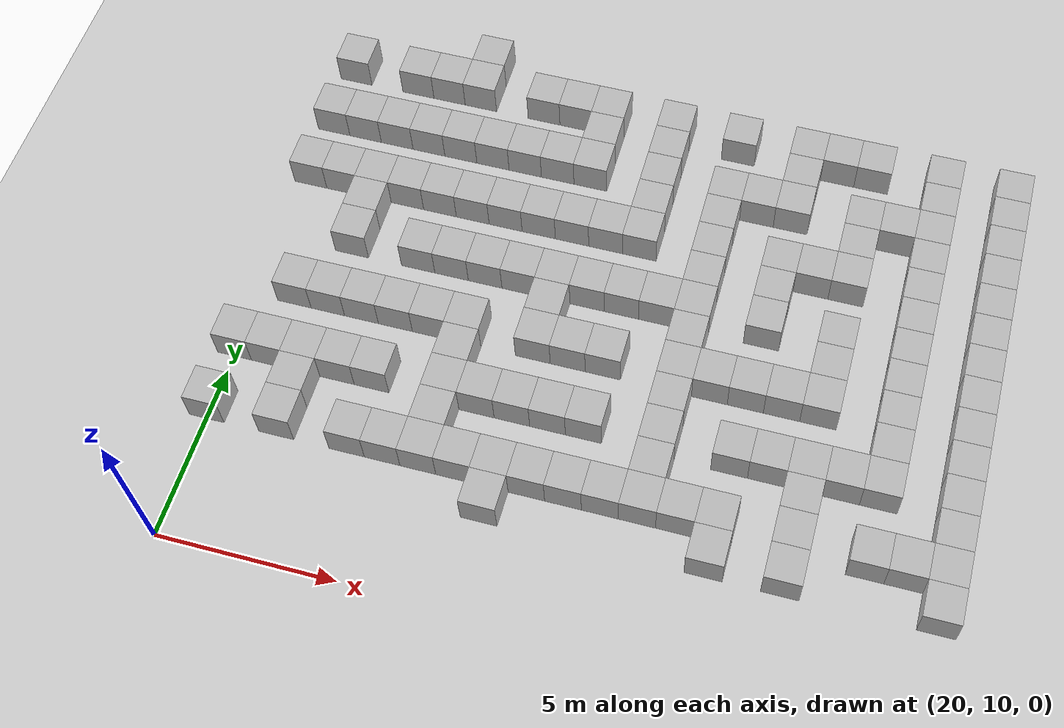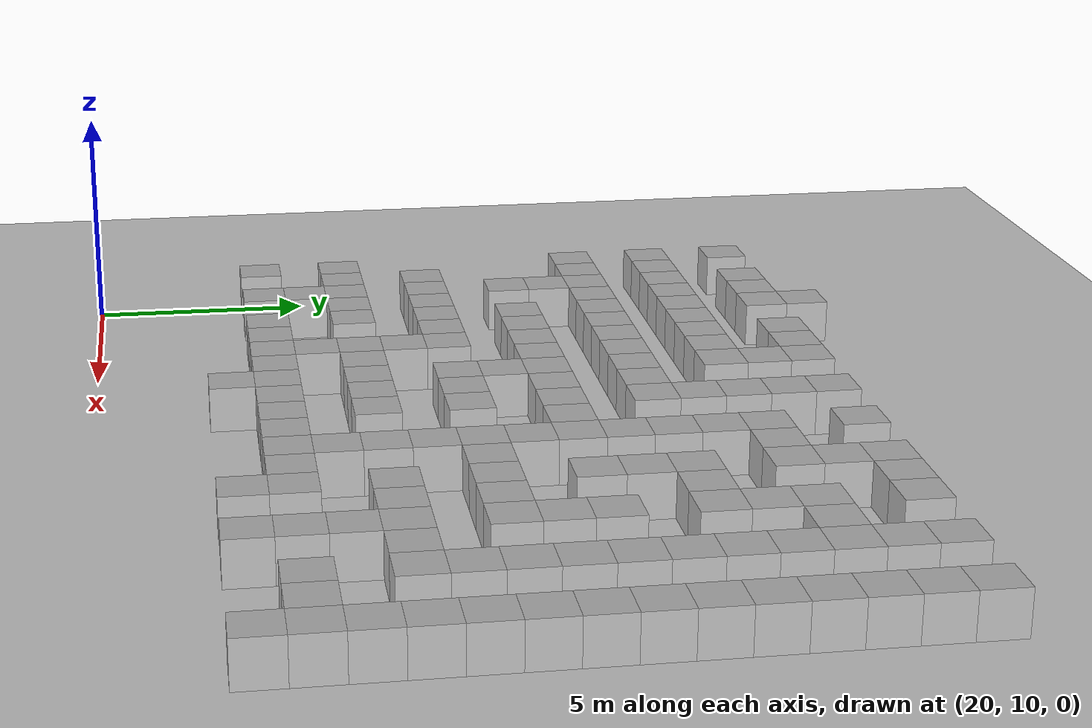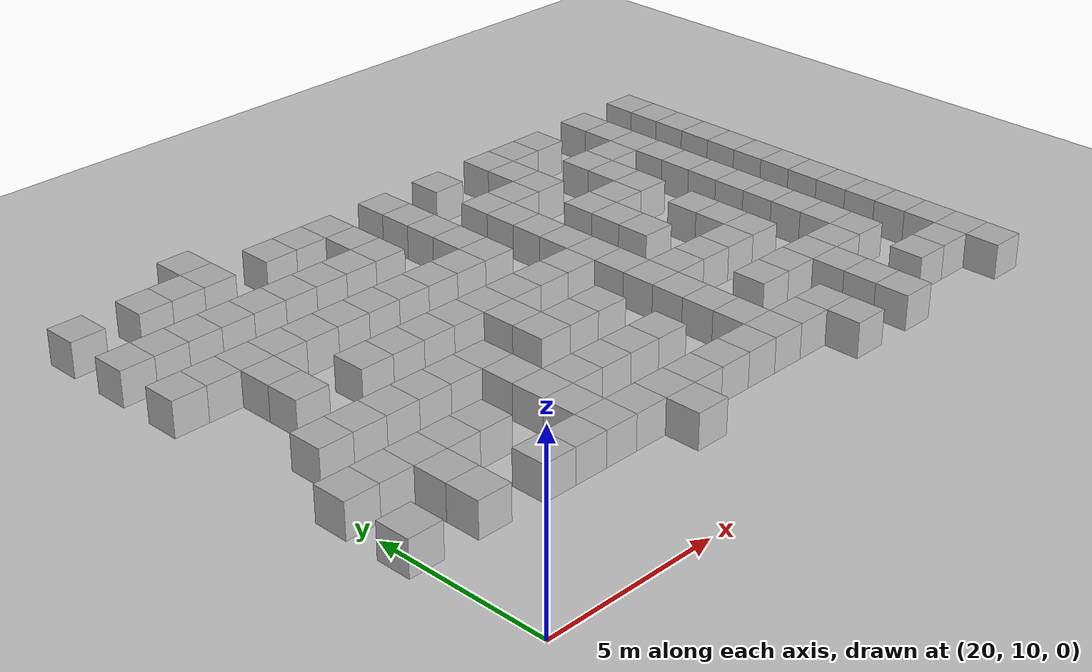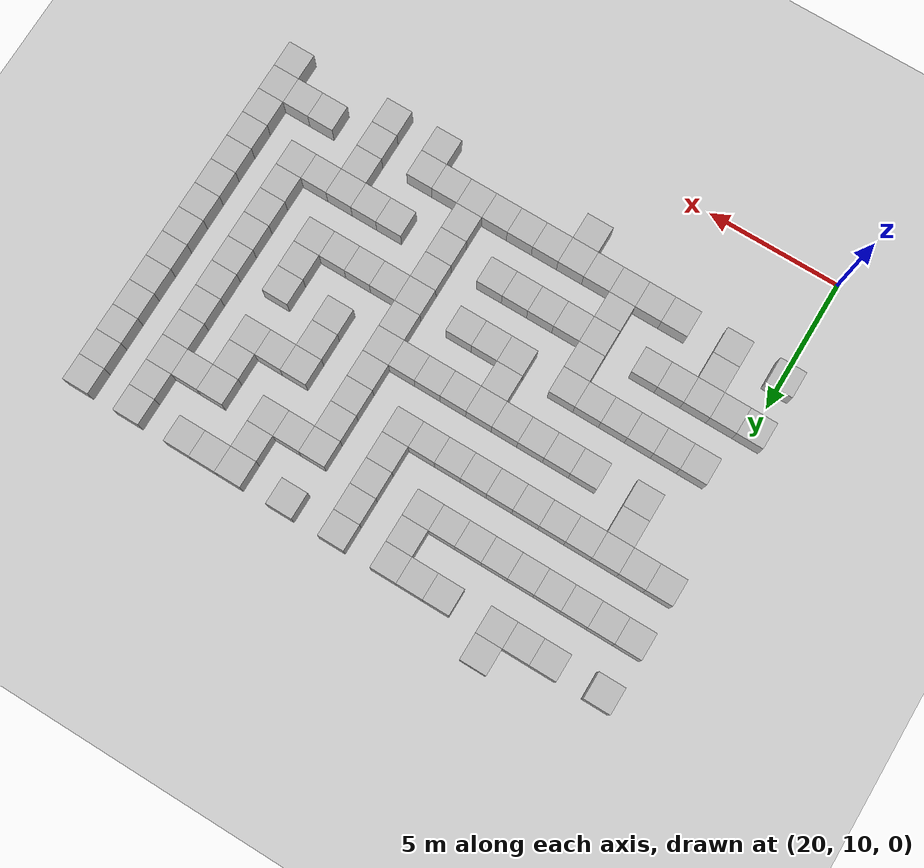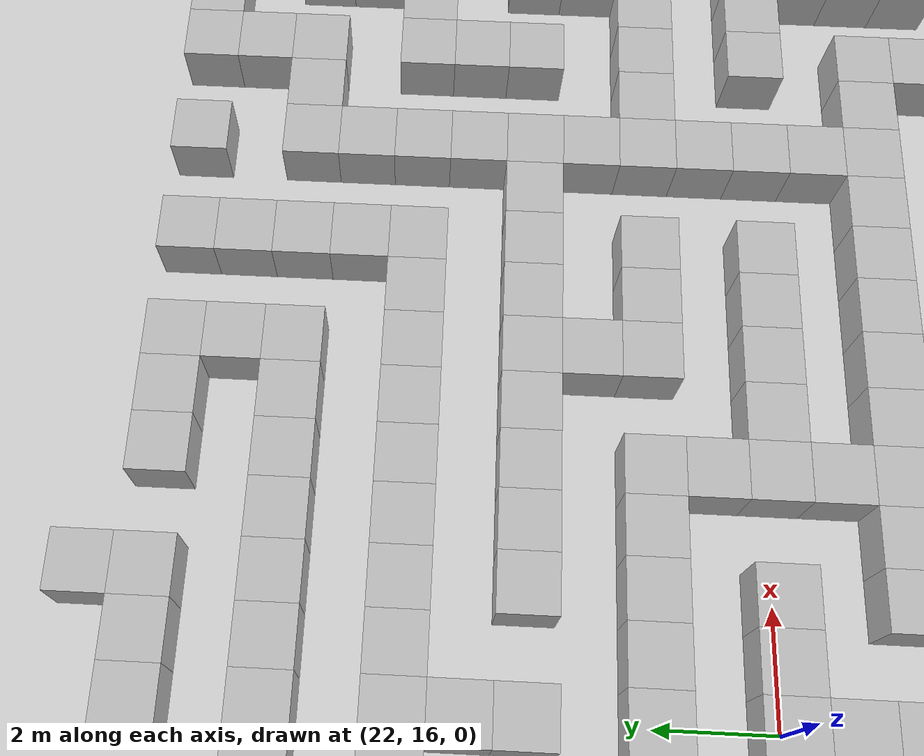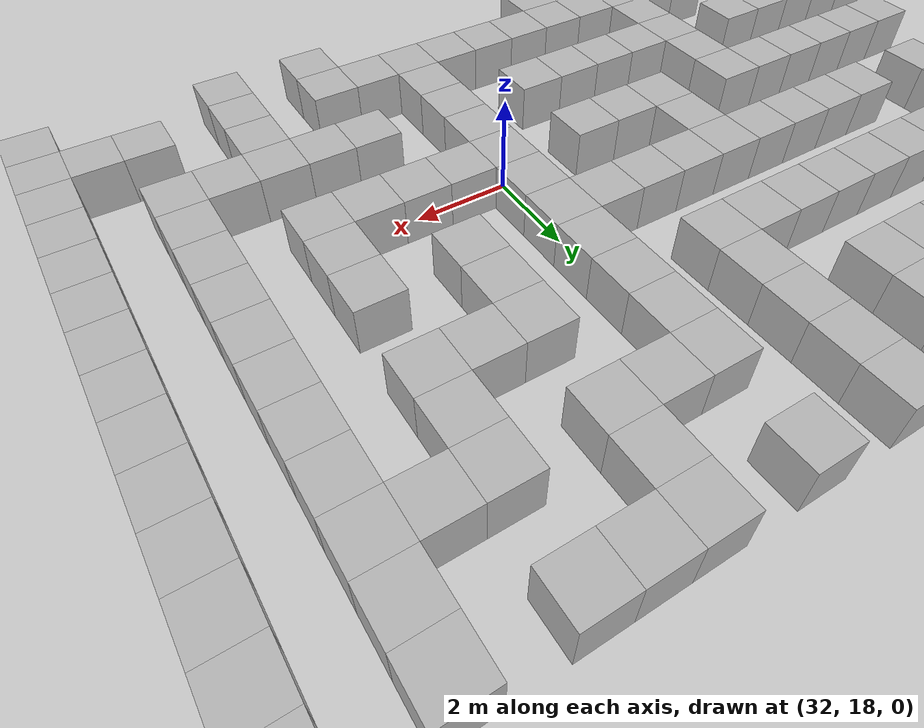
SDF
<sdf version="1.8">
 <world name="custom_maze">
  <model name="ground_plane">
   <static>1</static>
   <link name="link">
    <collision name="collision">
     <geometry><plane><normal>0 0 1</normal><size>100 100</size></plane></geometry>
    </collision>
    <visual name="visual">
     <geometry><plane><normal>0 0 1</normal><size>100 100</size></plane></geometry>
     <material>
      <ambient>0.8 0.8 0.8 1</ambient>
      <diffuse>0.8 0.8 0.8 1</diffuse>
      <specular>0.8 0.8 0.8 1</specular>
     </material>
     <plugin name="__default__" filename="__default__"/>
    </visual>
   </link>
   <plugin name="__default__" filename="__default__"/>
  </model>
  <model name="obstacles">
   <pose>0 0 0.5 0 0 0</pose>
   <static>true</static>
   <link name="wall16">
    <pose>34 16 0 0 0 0</pose>
    <static>true</static>
    <collision name="wall16_collision"><geometry><box><size>1 1 1</size></box></geometry></collision>
    <visual name="wall16_visual"><geometry><box><size>1 1 1</size></box></geometry></visual>
   </link>
   <link name="wall21">
    <pose>29 22 0 0 0 0</pose>
    <static>true</static>
    <collision name="wall21_collision"><geometry><box><size>1 1 1</size></box></geometry></collision>
    <visual name="wall21_visual"><geometry><box><size>1 1 1</size></box></geometry></visual>
   </link>
   <link name="wall22">
    <pose>21 18 0 0 0 0</pose>
    <static>true</static>
    <collision name="wall22_collision"><geometry><box><size>1 1 1</size></box></geometry></collision>
    <visual name="wall22_visual"><geometry><box><size>1 1 1</size></box></geometry></visual>
   </link>
   <link name="wall28">
    <pose>25 24 0 0 0 0</pose>
    <static>true</static>
    <collision name="wall28_collision"><geometry><box><size>1 1 1</size></box></geometry></collision>
    <visual name="wall28_visual"><geometry><box><size>1 1 1</size></box></geometry></visual>
   </link>
   <link name="wall30">
    <pose>22 18 0 0 0 0</pose>
    <static>true</static>
    <collision name="wall30_collision"><geometry><box><size>1 1 1</size></box></geometry></collision>
    <visual name="wall30_visual"><geometry><box><size>1 1 1</size></box></geometry></visual>
   </link>
   <link name="wall38">
    <pose>36 15 0 0 0 0</pose>
    <static>true</static>
    <collision name="wall38_collision"><geometry><box><size>1 1 1</size></box></geometry></collision>
    <visual name="wall38_visual"><geometry><box><size>1 1 1</size></box></geometry></visual>
   </link>
   <link name="wall42">
    <pose>40 21 0 0 0 0</pose>
    <static>true</static>
    <collision name="wall42_collision"><geometry><box><size>1 1 1</size></box></geometry></collision>
    <visual name="wall42_visual"><geometry><box><size>1 1 1</size></box></geometry></visual>
   </link>
   <link name="wall44">
    <pose>33 18 0 0 0 0</pose>
    <static>true</static>
    <collision name="wall44_collision"><geometry><box><size>1 1 1</size></box></geometry></collision>
    <visual name="wall44_visual"><geometry><box><size>1 1 1</size></box></geometry></visual>
   </link>
   <link name="wall45">
    <pose>25 14 0 0 0 0</pose>
    <static>true</static>
    <collision name="wall45_collision"><geometry><box><size>1 1 1</size></box></geometry></collision>
    <visual name="wall45_visual"><geometry><box><size>1 1 1</size></box></geometry></visual>
   </link>
   <link name="wall46">
    <pose>32 22 0 0 0 0</pose>
    <static>true</static>
    <collision name="wall46_collision"><geometry><box><size>1 1 1</size></box></geometry></collision>
    <visual name="wall46_visual"><geometry><box><size>1 1 1</size></box></geometry></visual>
   </link>
   <link name="wall51">
    <pose>28 24 0 0 0 0</pose>
    <static>true</static>
    <collision name="wall51_collision"><geometry><box><size>1 1 1</size></box></geometry></collision>
    <visual name="wall51_visual"><geometry><box><size>1 1 1</size></box></geometry></visual>
   </link>
   <link name="wall71">
    <pose>36 18 0 0 0 0</pose>
    <static>true</static>
    <collision name="wall71_collision"><geometry><box><size>1 1 1</size></box></geometry></collision>
    <visual name="wall71_visual"><geometry><box><size>1 1 1</size></box></geometry></visual>
   </link>
   <link name="wall72">
    <pose>28 14 0 0 0 0</pose>
    <static>true</static>
    <collision name="wall72_collision"><geometry><box><size>1 1 1</size></box></geometry></collision>
    <visual name="wall72_visual"><geometry><box><size>1 1 1</size></box></geometry></visual>
   </link>
   <link name="wall88">
    <pose>31 14 0 0 0 0</pose>
    <static>true</static>
    <collision name="wall88_collision"><geometry><box><size>1 1 1</size></box></geometry></collision>
    <visual name="wall88_visual"><geometry><box><size>1 1 1</size></box></geometry></visual>
   </link>
   <link name="wall97">
    <pose>30 26 0 0 0 0</pose>
    <static>true</static>
    <collision name="wall97_collision"><geometry><box><size>1 1 1</size></box></geometry></collision>
    <visual name="wall97_visual"><geometry><box><size>1 1 1</size></box></geometry></visual>
   </link>
   <link name="wall114">
    <pose>38 21 0 0 0 0</pose>
    <static>true</static>
    <collision name="wall114_collision"><geometry><box><size>1 1 1</size></box></geometry></collision>
    <visual name="wall114_visual"><geometry><box><size>1 1 1</size></box></geometry></visual>
   </link>
   <link name="wall115">
    <pose>30 16 0 0 0 0</pose>
    <static>true</static>
    <collision name="wall115_collision"><geometry><box><size>1 1 1</size></box></geometry></collision>
    <visual name="wall115_visual"><geometry><box><size>1 1 1</size></box></geometry></visual>
   </link>
   <link name="wall132">
    <pose>40 20 0 0 0 0</pose>
    <static>true</static>
    <collision name="wall132_collision"><geometry><box><size>1 1 1</size></box></geometry></collision>
    <visual name="wall132_visual"><geometry><box><size>1 1 1</size></box></geometry></visual>
   </link>
   <link name="wall136">
    <pose>34 18 0 0 0 0</pose>
    <static>true</static>
    <collision name="wall136_collision"><geometry><box><size>1 1 1</size></box></geometry></collision>
    <visual name="wall136_visual"><geometry><box><size>1 1 1</size></box></geometry></visual>
   </link>
   <link name="wall146">
    <pose>22 20 0 0 0 0</pose>
    <static>true</static>
    <collision name="wall146_collision"><geometry><box><size>1 1 1</size></box></geometry></collision>
    <visual name="wall146_visual"><geometry><box><size>1 1 1</size></box></geometry></visual>
   </link>
   <link name="wall154">
    <pose>28 13 0 0 0 0</pose>
    <static>true</static>
    <collision name="wall154_collision"><geometry><box><size>1 1 1</size></box></geometry></collision>
    <visual name="wall154_visual"><geometry><box><size>1 1 1</size></box></geometry></visual>
   </link>
   <link name="wall156">
    <pose>29 14 0 0 0 0</pose>
    <static>true</static>
    <collision name="wall156_collision"><geometry><box><size>1 1 1</size></box></geometry></collision>
    <visual name="wall156_visual"><geometry><box><size>1 1 1</size></box></geometry></visual>
   </link>
   <link name="wall157">
    <pose>40 23 0 0 0 0</pose>
    <static>true</static>
    <collision name="wall157_collision"><geometry><box><size>1 1 1</size></box></geometry></collision>
    <visual name="wall157_visual"><geometry><box><size>1 1 1</size></box></geometry></visual>
   </link>
   <link name="wall160">
    <pose>32 24 0 0 0 0</pose>
    <static>true</static>
    <collision name="wall160_collision"><geometry><box><size>1 1 1</size></box></geometry></collision>
    <visual name="wall160_visual"><geometry><box><size>1 1 1</size></box></geometry></visual>
   </link>
   <link name="wall161">
    <pose>24 20 0 0 0 0</pose>
    <static>true</static>
    <collision name="wall161_collision"><geometry><box><size>1 1 1</size></box></geometry></collision>
    <visual name="wall161_visual"><geometry><box><size>1 1 1</size></box></geometry></visual>
   </link>
   <link name="wall164">
    <pose>28 26 0 0 0 0</pose>
    <static>true</static>
    <collision name="wall164_collision"><geometry><box><size>1 1 1</size></box></geometry></collision>
    <visual name="wall164_visual"><geometry><box><size>1 1 1</size></box></geometry></visual>
   </link>
   <link name="wall175">
    <pose>40 13 0 0 0 0</pose>
    <static>true</static>
    <collision name="wall175_collision"><geometry><box><size>1 1 1</size></box></geometry></collision>
    <visual name="wall175_visual"><geometry><box><size>1 1 1</size></box></geometry></visual>
   </link>
   <link name="wall180">
    <pose>32 14 0 0 0 0</pose>
    <static>true</static>
    <collision name="wall180_collision"><geometry><box><size>1 1 1</size></box></geometry></collision>
    <visual name="wall180_visual"><geometry><box><size>1 1 1</size></box></geometry></visual>
   </link>
   <link name="wall183">
    <pose>36 20 0 0 0 0</pose>
    <static>true</static>
    <collision name="wall183_collision"><geometry><box><size>1 1 1</size></box></geometry></collision>
    <visual name="wall183_visual"><geometry><box><size>1 1 1</size></box></geometry></visual>
   </link>
   <link name="wall184">
    <pose>28 16 0 0 0 0</pose>
    <static>true</static>
    <collision name="wall184_collision"><geometry><box><size>1 1 1</size></box></geometry></collision>
    <visual name="wall184_visual"><geometry><box><size>1 1 1</size></box></geometry></visual>
   </link>
   <link name="wall187">
    <pose>23 22 0 0 0 0</pose>
    <static>true</static>
    <collision name="wall187_collision"><geometry><box><size>1 1 1</size></box></geometry></collision>
    <visual name="wall187_visual"><geometry><box><size>1 1 1</size></box></geometry></visual>
   </link>
   <link name="wall197">
    <pose>38 20 0 0 0 0</pose>
    <static>true</static>
    <collision name="wall197_collision"><geometry><box><size>1 1 1</size></box></geometry></collision>
    <visual name="wall197_visual"><geometry><box><size>1 1 1</size></box></geometry></visual>
   </link>
   <link name="wall205">
    <pose>26 22 0 0 0 0</pose>
    <static>true</static>
    <collision name="wall205_collision"><geometry><box><size>1 1 1</size></box></geometry></collision>
    <visual name="wall205_visual"><geometry><box><size>1 1 1</size></box></geometry></visual>
   </link>
   <link name="wall222">
    <pose>38 23 0 0 0 0</pose>
    <static>true</static>
    <collision name="wall222_collision"><geometry><box><size>1 1 1</size></box></geometry></collision>
    <visual name="wall222_visual"><geometry><box><size>1 1 1</size></box></geometry></visual>
   </link>
   <link name="wall224">
    <pose>30 18 0 0 0 0</pose>
    <static>true</static>
    <collision name="wall224_collision"><geometry><box><size>1 1 1</size></box></geometry></collision>
    <visual name="wall224_visual"><geometry><box><size>1 1 1</size></box></geometry></visual>
   </link>
   <link name="wall240">
    <pose>40 22 0 0 0 0</pose>
    <static>true</static>
    <collision name="wall240_collision"><geometry><box><size>1 1 1</size></box></geometry></collision>
    <visual name="wall240_visual"><geometry><box><size>1 1 1</size></box></geometry></visual>
   </link>
   <link name="wall247">
    <pose>28 25 0 0 0 0</pose>
    <static>true</static>
    <collision name="wall247_collision"><geometry><box><size>1 1 1</size></box></geometry></collision>
    <visual name="wall247_visual"><geometry><box><size>1 1 1</size></box></geometry></visual>
   </link>
   <link name="wall248">
    <pose>21 22 0 0 0 0</pose>
    <static>true</static>
    <collision name="wall248_collision"><geometry><box><size>1 1 1</size></box></geometry></collision>
    <visual name="wall248_visual"><geometry><box><size>1 1 1</size></box></geometry></visual>
   </link>
   <link name="wall261">
    <pose>36 19 0 0 0 0</pose>
    <static>true</static>
    <collision name="wall261_collision"><geometry><box><size>1 1 1</size></box></geometry></collision>
    <visual name="wall261_visual"><geometry><box><size>1 1 1</size></box></geometry></visual>
   </link>
   <link name="wall263">
    <pose>29 16 0 0 0 0</pose>
    <static>true</static>
    <collision name="wall263_collision"><geometry><box><size>1 1 1</size></box></geometry></collision>
    <visual name="wall263_visual"><geometry><box><size>1 1 1</size></box></geometry></visual>
   </link>
   <link name="wall264">
    <pose>40 25 0 0 0 0</pose>
    <static>true</static>
    <collision name="wall264_collision"><geometry><box><size>1 1 1</size></box></geometry></collision>
    <visual name="wall264_visual"><geometry><box><size>1 1 1</size></box></geometry></visual>
   </link>
   <link name="wall267">
    <pose>32 26 0 0 0 0</pose>
    <static>true</static>
    <collision name="wall267_collision"><geometry><box><size>1 1 1</size></box></geometry></collision>
    <visual name="wall267_visual"><geometry><box><size>1 1 1</size></box></geometry></visual>
   </link>
   <link name="wall268">
    <pose>24 22 0 0 0 0</pose>
    <static>true</static>
    <collision name="wall268_collision"><geometry><box><size>1 1 1</size></box></geometry></collision>
    <visual name="wall268_visual"><geometry><box><size>1 1 1</size></box></geometry></visual>
   </link>
   <link name="wall287">
    <pose>32 16 0 0 0 0</pose>
    <static>true</static>
    <collision name="wall287_collision"><geometry><box><size>1 1 1</size></box></geometry></collision>
    <visual name="wall287_visual"><geometry><box><size>1 1 1</size></box></geometry></visual>
   </link>
   <link name="wall291">
    <pose>28 18 0 0 0 0</pose>
    <static>true</static>
    <collision name="wall291_collision"><geometry><box><size>1 1 1</size></box></geometry></collision>
    <visual name="wall291_visual"><geometry><box><size>1 1 1</size></box></geometry></visual>
   </link>
   <link name="wall292">
    <pose>27 22 0 0 0 0</pose>
    <static>true</static>
    <collision name="wall292_collision"><geometry><box><size>1 1 1</size></box></geometry></collision>
    <visual name="wall292_visual"><geometry><box><size>1 1 1</size></box></geometry></visual>
   </link>
   <link name="wall295">
    <pose>23 24 0 0 0 0</pose>
    <static>true</static>
    <collision name="wall295_collision"><geometry><box><size>1 1 1</size></box></geometry></collision>
    <visual name="wall295_visual"><geometry><box><size>1 1 1</size></box></geometry></visual>
   </link>
   <link name="wall307">
    <pose>38 22 0 0 0 0</pose>
    <static>true</static>
    <collision name="wall307_collision"><geometry><box><size>1 1 1</size></box></geometry></collision>
    <visual name="wall307_visual"><geometry><box><size>1 1 1</size></box></geometry></visual>
   </link>
   <link name="wall315">
    <pose>26 24 0 0 0 0</pose>
    <static>true</static>
    <collision name="wall315_collision"><geometry><box><size>1 1 1</size></box></geometry></collision>
    <visual name="wall315_visual"><geometry><box><size>1 1 1</size></box></geometry></visual>
   </link>
   <link name="wall330">
    <pose>37 24 0 0 0 0</pose>
    <static>true</static>
    <collision name="wall330_collision"><geometry><box><size>1 1 1</size></box></geometry></collision>
    <visual name="wall330_visual"><geometry><box><size>1 1 1</size></box></geometry></visual>
   </link>
   <link name="wall332">
    <pose>26 14 0 0 0 0</pose>
    <static>true</static>
    <collision name="wall332_collision"><geometry><box><size>1 1 1</size></box></geometry></collision>
    <visual name="wall332_visual"><geometry><box><size>1 1 1</size></box></geometry></visual>
   </link>
   <link name="wall336">
    <pose>22 21 0 0 0 0</pose>
    <static>true</static>
    <collision name="wall336_collision"><geometry><box><size>1 1 1</size></box></geometry></collision>
    <visual name="wall336_visual"><geometry><box><size>1 1 1</size></box></geometry></visual>
   </link>
   <link name="wall350">
    <pose>40 24 0 0 0 0</pose>
    <static>true</static>
    <collision name="wall350_collision"><geometry><box><size>1 1 1</size></box></geometry></collision>
    <visual name="wall350_visual"><geometry><box><size>1 1 1</size></box></geometry></visual>
   </link>
   <link name="wall359">
    <pose>21 24 0 0 0 0</pose>
    <static>true</static>
    <collision name="wall359_collision"><geometry><box><size>1 1 1</size></box></geometry></collision>
    <visual name="wall359_visual"><geometry><box><size>1 1 1</size></box></geometry></visual>
   </link>
   <link name="wall368">
    <pose>40 14 0 0 0 0</pose>
    <static>true</static>
    <collision name="wall368_collision"><geometry><box><size>1 1 1</size></box></geometry></collision>
    <visual name="wall368_visual"><geometry><box><size>1 1 1</size></box></geometry></visual>
   </link>
   <link name="wall370">
    <pose>32 15 0 0 0 0</pose>
    <static>true</static>
    <collision name="wall370_collision"><geometry><box><size>1 1 1</size></box></geometry></collision>
    <visual name="wall370_visual"><geometry><box><size>1 1 1</size></box></geometry></visual>
   </link>
   <link name="wall373">
    <pose>29 18 0 0 0 0</pose>
    <static>true</static>
    <collision name="wall373_collision"><geometry><box><size>1 1 1</size></box></geometry></collision>
    <visual name="wall373_visual"><geometry><box><size>1 1 1</size></box></geometry></visual>
   </link>
   <link name="wall377">
    <pose>24 24 0 0 0 0</pose>
    <static>true</static>
    <collision name="wall377_collision"><geometry><box><size>1 1 1</size></box></geometry></collision>
    <visual name="wall377_visual"><geometry><box><size>1 1 1</size></box></geometry></visual>
   </link>
   <link name="wall394">
    <pose>32 18 0 0 0 0</pose>
    <static>true</static>
    <collision name="wall394_collision"><geometry><box><size>1 1 1</size></box></geometry></collision>
    <visual name="wall394_visual"><geometry><box><size>1 1 1</size></box></geometry></visual>
   </link>
   <link name="wall395">
    <pose>24 14 0 0 0 0</pose>
    <static>true</static>
    <collision name="wall395_collision"><geometry><box><size>1 1 1</size></box></geometry></collision>
    <visual name="wall395_visual"><geometry><box><size>1 1 1</size></box></geometry></visual>
   </link>
   <link name="wall399">
    <pose>27 24 0 0 0 0</pose>
    <static>true</static>
    <collision name="wall399_collision"><geometry><box><size>1 1 1</size></box></geometry></collision>
    <visual name="wall399_visual"><geometry><box><size>1 1 1</size></box></geometry></visual>
   </link>
   <link name="wall405">
    <pose>23 26 0 0 0 0</pose>
    <static>true</static>
    <collision name="wall405_collision"><geometry><box><size>1 1 1</size></box></geometry></collision>
    <visual name="wall405_visual"><geometry><box><size>1 1 1</size></box></geometry></visual>
   </link>
   <link name="wall417">
    <pose>38 24 0 0 0 0</pose>
    <static>true</static>
    <collision name="wall417_collision"><geometry><box><size>1 1 1</size></box></geometry></collision>
    <visual name="wall417_visual"><geometry><box><size>1 1 1</size></box></geometry></visual>
   </link>
   <link name="wall420">
    <pose>27 14 0 0 0 0</pose>
    <static>true</static>
    <collision name="wall420_collision"><geometry><box><size>1 1 1</size></box></geometry></collision>
    <visual name="wall420_visual"><geometry><box><size>1 1 1</size></box></geometry></visual>
   </link>
   <link name="wall426">
    <pose>31 20 0 0 0 0</pose>
    <static>true</static>
    <collision name="wall426_collision"><geometry><box><size>1 1 1</size></box></geometry></collision>
    <visual name="wall426_visual"><geometry><box><size>1 1 1</size></box></geometry></visual>
   </link>
   <link name="wall428">
    <pose>23 16 0 0 0 0</pose>
    <static>true</static>
    <collision name="wall428_collision"><geometry><box><size>1 1 1</size></box></geometry></collision>
    <visual name="wall428_visual"><geometry><box><size>1 1 1</size></box></geometry></visual>
   </link>
   <link name="wall431">
    <pose>26 26 0 0 0 0</pose>
    <static>true</static>
    <collision name="wall431_collision"><geometry><box><size>1 1 1</size></box></geometry></collision>
    <visual name="wall431_visual"><geometry><box><size>1 1 1</size></box></geometry></visual>
   </link>
   <link name="wall441">
    <pose>38 14 0 0 0 0</pose>
    <static>true</static>
    <collision name="wall441_collision"><geometry><box><size>1 1 1</size></box></geometry></collision>
    <visual name="wall441_visual"><geometry><box><size>1 1 1</size></box></geometry></visual>
   </link>
   <link name="wall447">
    <pose>34 21 0 0 0 0</pose>
    <static>true</static>
    <collision name="wall447_collision"><geometry><box><size>1 1 1</size></box></geometry></collision>
    <visual name="wall447_visual"><geometry><box><size>1 1 1</size></box></geometry></visual>
   </link>
   <link name="wall448">
    <pose>26 16 0 0 0 0</pose>
    <static>true</static>
    <collision name="wall448_collision"><geometry><box><size>1 1 1</size></box></geometry></collision>
    <visual name="wall448_visual"><geometry><box><size>1 1 1</size></box></geometry></visual>
   </link>
   <link name="wall462">
    <pose>37 16 0 0 0 0</pose>
    <static>true</static>
    <collision name="wall462_collision"><geometry><box><size>1 1 1</size></box></geometry></collision>
    <visual name="wall462_visual"><geometry><box><size>1 1 1</size></box></geometry></visual>
   </link>
   <link name="wall466">
    <pose>40 26 0 0 0 0</pose>
    <static>true</static>
    <collision name="wall466_collision"><geometry><box><size>1 1 1</size></box></geometry></collision>
    <visual name="wall466_visual"><geometry><box><size>1 1 1</size></box></geometry></visual>
   </link>
   <link name="wall484">
    <pose>40 16 0 0 0 0</pose>
    <static>true</static>
    <collision name="wall484_collision"><geometry><box><size>1 1 1</size></box></geometry></collision>
    <visual name="wall484_visual"><geometry><box><size>1 1 1</size></box></geometry></visual>
   </link>
   <link name="wall485">
    <pose>32 17 0 0 0 0</pose>
    <static>true</static>
    <collision name="wall485_collision"><geometry><box><size>1 1 1</size></box></geometry></collision>
    <visual name="wall485_visual"><geometry><box><size>1 1 1</size></box></geometry></visual>
   </link>
   <link name="wall486">
    <pose>35 22 0 0 0 0</pose>
    <static>true</static>
    <collision name="wall486_collision"><geometry><box><size>1 1 1</size></box></geometry></collision>
    <visual name="wall486_visual"><geometry><box><size>1 1 1</size></box></geometry></visual>
   </link>
   <link name="wall489">
    <pose>36 23 0 0 0 0</pose>
    <static>true</static>
    <collision name="wall489_collision"><geometry><box><size>1 1 1</size></box></geometry></collision>
    <visual name="wall489_visual"><geometry><box><size>1 1 1</size></box></geometry></visual>
   </link>
   <link name="wall491">
    <pose>28 19 0 0 0 0</pose>
    <static>true</static>
    <collision name="wall491_collision"><geometry><box><size>1 1 1</size></box></geometry></collision>
    <visual name="wall491_visual"><geometry><box><size>1 1 1</size></box></geometry></visual>
   </link>
   <link name="wall493">
    <pose>21 16 0 0 0 0</pose>
    <static>true</static>
    <collision name="wall493_collision"><geometry><box><size>1 1 1</size></box></geometry></collision>
    <visual name="wall493_visual"><geometry><box><size>1 1 1</size></box></geometry></visual>
   </link>
   <link name="wall498">
    <pose>24 26 0 0 0 0</pose>
    <static>true</static>
    <collision name="wall498_collision"><geometry><box><size>1 1 1</size></box></geometry></collision>
    <visual name="wall498_visual"><geometry><box><size>1 1 1</size></box></geometry></visual>
   </link>
   <link name="wall511">
    <pose>36 13 0 0 0 0</pose>
    <static>true</static>
    <collision name="wall511_collision"><geometry><box><size>1 1 1</size></box></geometry></collision>
    <visual name="wall511_visual"><geometry><box><size>1 1 1</size></box></geometry></visual>
   </link>
   <link name="wall518">
    <pose>32 20 0 0 0 0</pose>
    <static>true</static>
    <collision name="wall518_collision"><geometry><box><size>1 1 1</size></box></geometry></collision>
    <visual name="wall518_visual"><geometry><box><size>1 1 1</size></box></geometry></visual>
   </link>
   <link name="wall519">
    <pose>24 16 0 0 0 0</pose>
    <static>true</static>
    <collision name="wall519_collision"><geometry><box><size>1 1 1</size></box></geometry></collision>
    <visual name="wall519_visual"><geometry><box><size>1 1 1</size></box></geometry></visual>
   </link>
   <link name="wall522">
    <pose>27 26 0 0 0 0</pose>
    <static>true</static>
    <collision name="wall522_collision"><geometry><box><size>1 1 1</size></box></geometry></collision>
    <visual name="wall522_visual"><geometry><box><size>1 1 1</size></box></geometry></visual>
   </link>
   <link name="wall531">
    <pose>34 20 0 0 0 0</pose>
    <static>true</static>
    <collision name="wall531_collision"><geometry><box><size>1 1 1</size></box></geometry></collision>
    <visual name="wall531_visual"><geometry><box><size>1 1 1</size></box></geometry></visual>
   </link>
   <link name="wall535">
    <pose>26 15 0 0 0 0</pose>
    <static>true</static>
    <collision name="wall535_collision"><geometry><box><size>1 1 1</size></box></geometry></collision>
    <visual name="wall535_visual"><geometry><box><size>1 1 1</size></box></geometry></visual>
   </link>
   <link name="wall536">
    <pose>38 26 0 0 0 0</pose>
    <static>true</static>
    <collision name="wall536_collision"><geometry><box><size>1 1 1</size></box></geometry></collision>
    <visual name="wall536_visual"><geometry><box><size>1 1 1</size></box></geometry></visual>
   </link>
   <link name="wall539">
    <pose>27 16 0 0 0 0</pose>
    <static>true</static>
    <collision name="wall539_collision"><geometry><box><size>1 1 1</size></box></geometry></collision>
    <visual name="wall539_visual"><geometry><box><size>1 1 1</size></box></geometry></visual>
   </link>
   <link name="wall545">
    <pose>23 18 0 0 0 0</pose>
    <static>true</static>
    <collision name="wall545_collision"><geometry><box><size>1 1 1</size></box></geometry></collision>
    <visual name="wall545_visual"><geometry><box><size>1 1 1</size></box></geometry></visual>
   </link>
   <link name="wall546">
    <pose>22 22 0 0 0 0</pose>
    <static>true</static>
    <collision name="wall546_collision"><geometry><box><size>1 1 1</size></box></geometry></collision>
    <visual name="wall546_visual"><geometry><box><size>1 1 1</size></box></geometry></visual>
   </link>
   <link name="wall555">
    <pose>38 16 0 0 0 0</pose>
    <static>true</static>
    <collision name="wall555_collision"><geometry><box><size>1 1 1</size></box></geometry></collision>
    <visual name="wall555_visual"><geometry><box><size>1 1 1</size></box></geometry></visual>
   </link>
   <link name="wall560">
    <pose>25 18 0 0 0 0</pose>
    <static>true</static>
    <collision name="wall560_collision"><geometry><box><size>1 1 1</size></box></geometry></collision>
    <visual name="wall560_visual"><geometry><box><size>1 1 1</size></box></geometry></visual>
   </link>
   <link name="wall566">
    <pose>26 18 0 0 0 0</pose>
    <static>true</static>
    <collision name="wall566_collision"><geometry><box><size>1 1 1</size></box></geometry></collision>
    <visual name="wall566_visual"><geometry><box><size>1 1 1</size></box></geometry></visual>
   </link>
   <link name="wall571">
    <pose>40 15 0 0 0 0</pose>
    <static>true</static>
    <collision name="wall571_collision"><geometry><box><size>1 1 1</size></box></geometry></collision>
    <visual name="wall571_visual"><geometry><box><size>1 1 1</size></box></geometry></visual>
   </link>
   <link name="wall578">
    <pose>36 22 0 0 0 0</pose>
    <static>true</static>
    <collision name="wall578_collision"><geometry><box><size>1 1 1</size></box></geometry></collision>
    <visual name="wall578_visual"><geometry><box><size>1 1 1</size></box></geometry></visual>
   </link>
   <link name="wall596">
    <pose>40 18 0 0 0 0</pose>
    <static>true</static>
    <collision name="wall596_collision"><geometry><box><size>1 1 1</size></box></geometry></collision>
    <visual name="wall596_visual"><geometry><box><size>1 1 1</size></box></geometry></visual>
   </link>
   <link name="wall599">
    <pose>32 19 0 0 0 0</pose>
    <static>true</static>
    <collision name="wall599_collision"><geometry><box><size>1 1 1</size></box></geometry></collision>
    <visual name="wall599_visual"><geometry><box><size>1 1 1</size></box></geometry></visual>
   </link>
   <link name="wall603">
    <pose>20 22 0 0 0 0</pose>
    <static>true</static>
    <collision name="wall603_collision"><geometry><box><size>1 1 1</size></box></geometry></collision>
    <visual name="wall603_visual"><geometry><box><size>1 1 1</size></box></geometry></visual>
   </link>
   <link name="wall618">
    <pose>38 25 0 0 0 0</pose>
    <static>true</static>
    <collision name="wall618_collision"><geometry><box><size>1 1 1</size></box></geometry></collision>
    <visual name="wall618_visual"><geometry><box><size>1 1 1</size></box></geometry></visual>
   </link>
   <link name="wall619">
    <pose>30 20 0 0 0 0</pose>
    <static>true</static>
    <collision name="wall619_collision"><geometry><box><size>1 1 1</size></box></geometry></collision>
    <visual name="wall619_visual"><geometry><box><size>1 1 1</size></box></geometry></visual>
   </link>
   <link name="wall627">
    <pose>24 18 0 0 0 0</pose>
    <static>true</static>
    <collision name="wall627_collision"><geometry><box><size>1 1 1</size></box></geometry></collision>
    <visual name="wall627_visual"><geometry><box><size>1 1 1</size></box></geometry></visual>
   </link>
   <link name="wall643">
    <pose>34 22 0 0 0 0</pose>
    <static>true</static>
    <collision name="wall643_collision"><geometry><box><size>1 1 1</size></box></geometry></collision>
    <visual name="wall643_visual"><geometry><box><size>1 1 1</size></box></geometry></visual>
   </link>
   <link name="wall646">
    <pose>26 17 0 0 0 0</pose>
    <static>true</static>
    <collision name="wall646_collision"><geometry><box><size>1 1 1</size></box></geometry></collision>
    <visual name="wall646_visual"><geometry><box><size>1 1 1</size></box></geometry></visual>
   </link>
   <link name="wall652">
    <pose>30 23 0 0 0 0</pose>
    <static>true</static>
    <collision name="wall652_collision"><geometry><box><size>1 1 1</size></box></geometry></collision>
    <visual name="wall652_visual"><geometry><box><size>1 1 1</size></box></geometry></visual>
   </link>
   <link name="wall655">
    <pose>22 24 0 0 0 0</pose>
    <static>true</static>
    <collision name="wall655_collision"><geometry><box><size>1 1 1</size></box></geometry></collision>
    <visual name="wall655_visual"><geometry><box><size>1 1 1</size></box></geometry></visual>
   </link>
   <link name="wall669">
    <pose>38 18 0 0 0 0</pose>
    <static>true</static>
    <collision name="wall669_collision"><geometry><box><size>1 1 1</size></box></geometry></collision>
    <visual name="wall669_visual"><geometry><box><size>1 1 1</size></box></geometry></visual>
   </link>
   <link name="wall673">
    <pose>33 24 0 0 0 0</pose>
    <static>true</static>
    <collision name="wall673_collision"><geometry><box><size>1 1 1</size></box></geometry></collision>
    <visual name="wall673_visual"><geometry><box><size>1 1 1</size></box></geometry></visual>
   </link>
   <link name="wall674">
    <pose>25 20 0 0 0 0</pose>
    <static>true</static>
    <collision name="wall674_collision"><geometry><box><size>1 1 1</size></box></geometry></collision>
    <visual name="wall674_visual"><geometry><box><size>1 1 1</size></box></geometry></visual>
   </link>
   <link name="wall677">
    <pose>22 14 0 0 0 0</pose>
    <static>true</static>
    <collision name="wall677_collision"><geometry><box><size>1 1 1</size></box></geometry></collision>
    <visual name="wall677_visual"><geometry><box><size>1 1 1</size></box></geometry></visual>
   </link>
   <link name="wall679">
    <pose>34 25 0 0 0 0</pose>
    <static>true</static>
    <collision name="wall679_collision"><geometry><box><size>1 1 1</size></box></geometry></collision>
    <visual name="wall679_visual"><geometry><box><size>1 1 1</size></box></geometry></visual>
   </link>
   <link name="wall682">
    <pose>26 20 0 0 0 0</pose>
    <static>true</static>
    <collision name="wall682_collision"><geometry><box><size>1 1 1</size></box></geometry></collision>
    <visual name="wall682_visual"><geometry><box><size>1 1 1</size></box></geometry></visual>
   </link>
   <link name="wall690">
    <pose>40 17 0 0 0 0</pose>
    <static>true</static>
    <collision name="wall690_collision"><geometry><box><size>1 1 1</size></box></geometry></collision>
    <visual name="wall690_visual"><geometry><box><size>1 1 1</size></box></geometry></visual>
   </link>
   <link name="wall693">
    <pose>33 14 0 0 0 0</pose>
    <static>true</static>
    <collision name="wall693_collision"><geometry><box><size>1 1 1</size></box></geometry></collision>
    <visual name="wall693_visual"><geometry><box><size>1 1 1</size></box></geometry></visual>
   </link>
   <link name="wall698">
    <pose>36 24 0 0 0 0</pose>
    <static>true</static>
    <collision name="wall698_collision"><geometry><box><size>1 1 1</size></box></geometry></collision>
    <visual name="wall698_visual"><geometry><box><size>1 1 1</size></box></geometry></visual>
   </link>
   <link name="wall699">
    <pose>28 20 0 0 0 0</pose>
    <static>true</static>
    <collision name="wall699_collision"><geometry><box><size>1 1 1</size></box></geometry></collision>
    <visual name="wall699_visual"><geometry><box><size>1 1 1</size></box></geometry></visual>
   </link>
   <link name="wall703">
    <pose>24 27 0 0 0 0</pose>
    <static>true</static>
    <collision name="wall703_collision"><geometry><box><size>1 1 1</size></box></geometry></collision>
    <visual name="wall703_visual"><geometry><box><size>1 1 1</size></box></geometry></visual>
   </link>
   <link name="wall716">
    <pose>36 14 0 0 0 0</pose>
    <static>true</static>
    <collision name="wall716_collision"><geometry><box><size>1 1 1</size></box></geometry></collision>
    <visual name="wall716_visual"><geometry><box><size>1 1 1</size></box></geometry></visual>
   </link>
   <link name="wall719">
    <pose>32 21 0 0 0 0</pose>
    <static>true</static>
    <collision name="wall719_collision"><geometry><box><size>1 1 1</size></box></geometry></collision>
    <visual name="wall719_visual"><geometry><box><size>1 1 1</size></box></geometry></visual>
   </link>
   <link name="wall721">
    <pose>35 26 0 0 0 0</pose>
    <static>true</static>
    <collision name="wall721_collision"><geometry><box><size>1 1 1</size></box></geometry></collision>
    <visual name="wall721_visual"><geometry><box><size>1 1 1</size></box></geometry></visual>
   </link>
   <link name="wall723">
    <pose>20 24 0 0 0 0</pose>
    <static>true</static>
    <collision name="wall723_collision"><geometry><box><size>1 1 1</size></box></geometry></collision>
    <visual name="wall723_visual"><geometry><box><size>1 1 1</size></box></geometry></visual>
   </link>
   <link name="wall732">
    <pose>39 14 0 0 0 0</pose>
    <static>true</static>
    <collision name="wall732_collision"><geometry><box><size>1 1 1</size></box></geometry></collision>
    <visual name="wall732_visual"><geometry><box><size>1 1 1</size></box></geometry></visual>
   </link>
   <link name="wall735">
    <pose>35 16 0 0 0 0</pose>
    <static>true</static>
    <collision name="wall735_collision"><geometry><box><size>1 1 1</size></box></geometry></collision>
    <visual name="wall735_visual"><geometry><box><size>1 1 1</size></box></geometry></visual>
   </link>
   <link name="wall738">
    <pose>30 22 0 0 0 0</pose>
    <static>true</static>
    <collision name="wall738_collision"><geometry><box><size>1 1 1</size></box></geometry></collision>
    <visual name="wall738_visual"><geometry><box><size>1 1 1</size></box></geometry></visual>
   </link>
   <link name="wall741">
    <pose>20 14 0 0 0 0</pose>
    <static>true</static>
    <collision name="wall741_collision"><geometry><box><size>1 1 1</size></box></geometry></collision>
    <visual name="wall741_visual"><geometry><box><size>1 1 1</size></box></geometry></visual>
   </link>
   <link name="wall758">
    <pose>38 17 0 0 0 0</pose>
    <static>true</static>
    <collision name="wall758_collision"><geometry><box><size>1 1 1</size></box></geometry></collision>
    <visual name="wall758_visual"><geometry><box><size>1 1 1</size></box></geometry></visual>
   </link>
   <link name="wall765">
    <pose>34 24 0 0 0 0</pose>
    <static>true</static>
    <collision name="wall765_collision"><geometry><box><size>1 1 1</size></box></geometry></collision>
    <visual name="wall765_visual"><geometry><box><size>1 1 1</size></box></geometry></visual>
   </link>
   <link name="wall769">
    <pose>27 20 0 0 0 0</pose>
    <static>true</static>
    <collision name="wall769_collision"><geometry><box><size>1 1 1</size></box></geometry></collision>
    <visual name="wall769_visual"><geometry><box><size>1 1 1</size></box></geometry></visual>
   </link>
   <link name="wall773">
    <pose>30 25 0 0 0 0</pose>
    <static>true</static>
    <collision name="wall773_collision"><geometry><box><size>1 1 1</size></box></geometry></collision>
    <visual name="wall773_visual"><geometry><box><size>1 1 1</size></box></geometry></visual>
   </link>
   <link name="wall775">
    <pose>22 26 0 0 0 0</pose>
    <static>true</static>
    <collision name="wall775_collision"><geometry><box><size>1 1 1</size></box></geometry></collision>
    <visual name="wall775_visual"><geometry><box><size>1 1 1</size></box></geometry></visual>
   </link>
   <link name="wall783">
    <pose>34 14 0 0 0 0</pose>
    <static>true</static>
    <collision name="wall783_collision"><geometry><box><size>1 1 1</size></box></geometry></collision>
    <visual name="wall783_visual"><geometry><box><size>1 1 1</size></box></geometry></visual>
   </link>
   <link name="wall788">
    <pose>29 20 0 0 0 0</pose>
    <static>true</static>
    <collision name="wall788_collision"><geometry><box><size>1 1 1</size></box></geometry></collision>
    <visual name="wall788_visual"><geometry><box><size>1 1 1</size></box></geometry></visual>
   </link>
   <link name="wall792">
    <pose>25 22 0 0 0 0</pose>
    <static>true</static>
    <collision name="wall792_collision"><geometry><box><size>1 1 1</size></box></geometry></collision>
    <visual name="wall792_visual"><geometry><box><size>1 1 1</size></box></geometry></visual>
   </link>
   <link name="wall794">
    <pose>22 16 0 0 0 0</pose>
    <static>true</static>
    <collision name="wall794_collision"><geometry><box><size>1 1 1</size></box></geometry></collision>
    <visual name="wall794_visual"><geometry><box><size>1 1 1</size></box></geometry></visual>
   </link>
   <link name="wall804">
    <pose>40 19 0 0 0 0</pose>
    <static>true</static>
    <collision name="wall804_collision"><geometry><box><size>1 1 1</size></box></geometry></collision>
    <visual name="wall804_visual"><geometry><box><size>1 1 1</size></box></geometry></visual>
   </link>
   <link name="wall811">
    <pose>36 26 0 0 0 0</pose>
    <static>true</static>
    <collision name="wall811_collision"><geometry><box><size>1 1 1</size></box></geometry></collision>
    <visual name="wall811_visual"><geometry><box><size>1 1 1</size></box></geometry></visual>
   </link>
   <link name="wall812">
    <pose>28 22 0 0 0 0</pose>
    <static>true</static>
    <collision name="wall812_collision"><geometry><box><size>1 1 1</size></box></geometry></collision>
    <visual name="wall812_visual"><geometry><box><size>1 1 1</size></box></geometry></visual>
   </link>
   <link name="wall829">
    <pose>36 16 0 0 0 0</pose>
    <static>true</static>
    <collision name="wall829_collision"><geometry><box><size>1 1 1</size></box></geometry></collision>
    <visual name="wall829_visual"><geometry><box><size>1 1 1</size></box></geometry></visual>
   </link>
   <link name="wall832">
    <pose>32 23 0 0 0 0</pose>
    <static>true</static>
    <collision name="wall832_collision"><geometry><box><size>1 1 1</size></box></geometry></collision>
    <visual name="wall832_visual"><geometry><box><size>1 1 1</size></box></geometry></visual>
   </link>
   <link name="wall837">
    <pose>20 26 0 0 0 0</pose>
    <static>true</static>
    <collision name="wall837_collision"><geometry><box><size>1 1 1</size></box></geometry></collision>
    <visual name="wall837_visual"><geometry><box><size>1 1 1</size></box></geometry></visual>
   </link>
   <link name="wall852">
    <pose>35 18 0 0 0 0</pose>
    <static>true</static>
    <collision name="wall852_collision"><geometry><box><size>1 1 1</size></box></geometry></collision>
    <visual name="wall852_visual"><geometry><box><size>1 1 1</size></box></geometry></visual>
   </link>
   <link name="wall854">
    <pose>30 24 0 0 0 0</pose>
    <static>true</static>
    <collision name="wall854_collision"><geometry><box><size>1 1 1</size></box></geometry></collision>
    <visual name="wall854_visual"><geometry><box><size>1 1 1</size></box></geometry></visual>
   </link>
   <link name="wall856">
    <pose>20 16 0 0 0 0</pose>
    <static>true</static>
    <collision name="wall856_collision"><geometry><box><size>1 1 1</size></box></geometry></collision>
    <visual name="wall856_visual"><geometry><box><size>1 1 1</size></box></geometry></visual>
   </link>
   <link name="wall868">
    <pose>34 13 0 0 0 0</pose>
    <static>true</static>
    <collision name="wall868_collision"><geometry><box><size>1 1 1</size></box></geometry></collision>
    <visual name="wall868_visual"><geometry><box><size>1 1 1</size></box></geometry></visual>
   </link>
   <link name="wall872">
    <pose>38 19 0 0 0 0</pose>
    <static>true</static>
    <collision name="wall872_collision"><geometry><box><size>1 1 1</size></box></geometry></collision>
    <visual name="wall872_visual"><geometry><box><size>1 1 1</size></box></geometry></visual>
   </link>
   <link name="wall874">
    <pose>30 14 0 0 0 0</pose>
    <static>true</static>
    <collision name="wall874_collision"><geometry><box><size>1 1 1</size></box></geometry></collision>
    <visual name="wall874_visual"><geometry><box><size>1 1 1</size></box></geometry></visual>
   </link>
   <link name="wall878">
    <pose>22 15 0 0 0 0</pose>
    <static>true</static>
    <collision name="wall878_collision"><geometry><box><size>1 1 1</size></box></geometry></collision>
    <visual name="wall878_visual"><geometry><box><size>1 1 1</size></box></geometry></visual>
   </link>
   <link name="wall879">
    <pose>34 26 0 0 0 0</pose>
    <static>true</static>
    <collision name="wall879_collision"><geometry><box><size>1 1 1</size></box></geometry></collision>
    <visual name="wall879_visual"><geometry><box><size>1 1 1</size></box></geometry></visual>
   </link>
  </model>
 </world>
</sdf>
